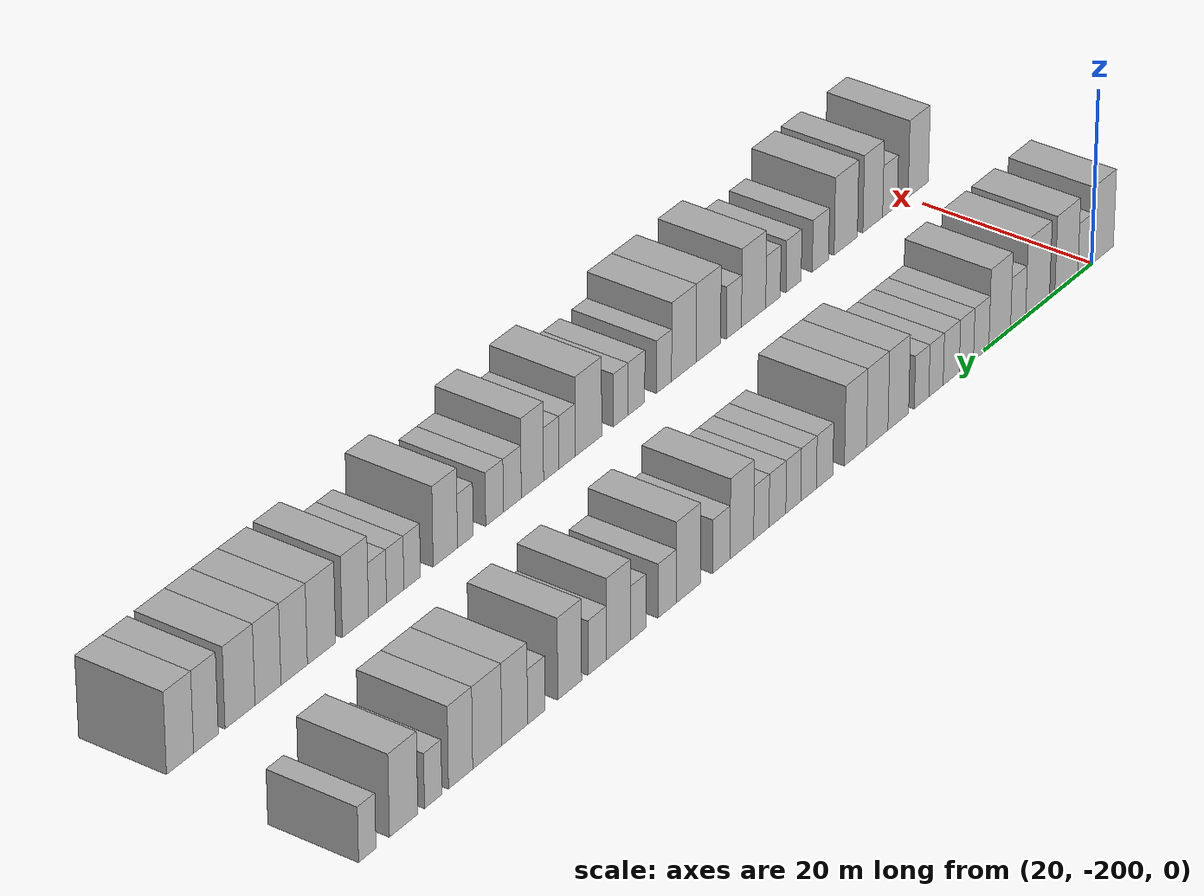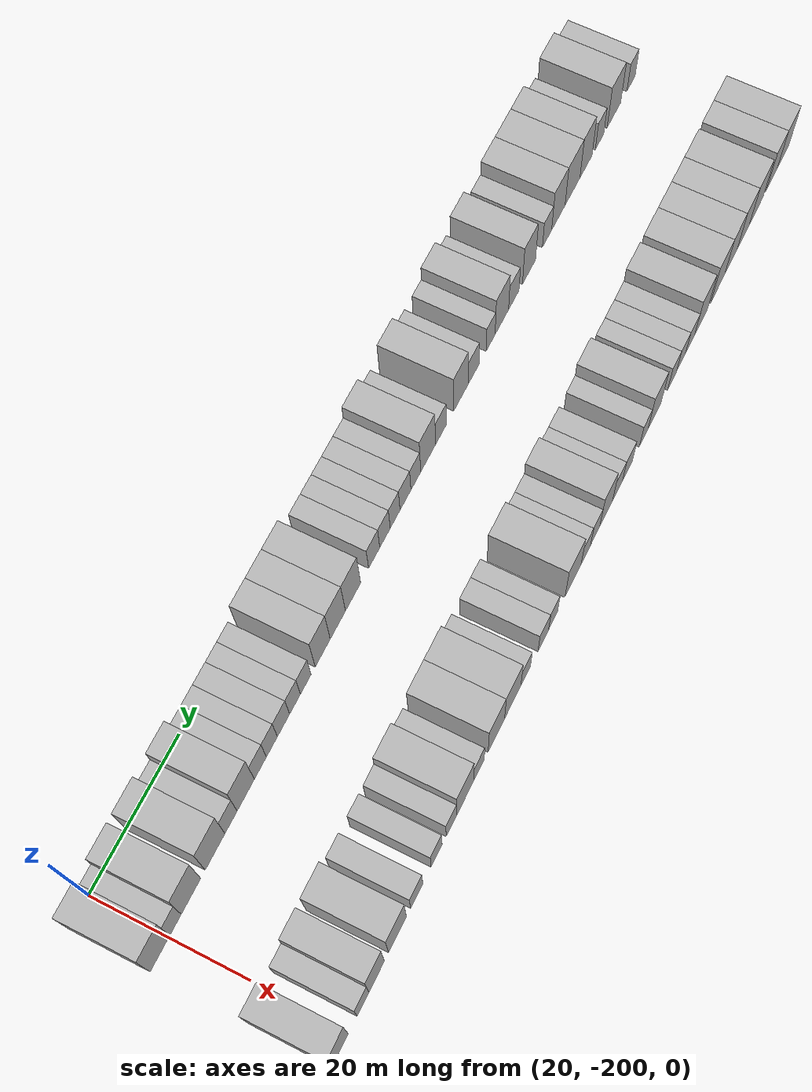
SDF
<sdf version="1.6">
 <world name="default">
  <model name="building_1">
   <static>1</static>
   <pose>25.0000 -201.8803 0 0.000000 0.000000 0.000000</pose>
   <link name="link">
    <pose>0 0 4.50 0 0 0</pose>
    <collision name="collision"><geometry><box><size>10.0000 4.2395 9.0000</size></box></geometry></collision>
    <visual name="visual">
     <cast_shadows>0</cast_shadows>
     <geometry><box><size>10.0000 4.2395 9.0000</size></box></geometry>
     <material>
      <script>
       <uri>model://HANNAS_wall/materials/scripts</uri>
       <uri>model://HANNAS_wall/materials/textures</uri>
       <name>vrc/HANNAS_wall</name>
      </script>
     </material>
    </visual>
   </link>
  </model>
  <model name="building_2">
   <static>1</static>
   <pose>25.0000 -198.5039 0 0.000000 0.000000 0.000000</pose>
   <link name="link">
    <pose>0 0 3.00 0 0 0</pose>
    <collision name="collision"><geometry><box><size>10.0000 2.5133 6.0000</size></box></geometry></collision>
    <visual name="visual">
     <cast_shadows>0</cast_shadows>
     <geometry><box><size>10.0000 2.5133 6.0000</size></box></geometry>
     <material>
      <script>
       <uri>model://HANNAS_wall/materials/scripts</uri>
       <uri>model://HANNAS_wall/materials/textures</uri>
       <name>vrc/HANNAS_wall</name>
      </script>
     </material>
    </visual>
   </link>
  </model>
  <model name="building_3">
   <static>1</static>
   <pose>25.0000 -195.0967 0 0.000000 0.000000 0.000000</pose>
   <link name="link">
    <pose>0 0 4.50 0 0 0</pose>
    <collision name="collision"><geometry><box><size>10.0000 4.3011 9.0000</size></box></geometry></collision>
    <visual name="visual">
     <cast_shadows>0</cast_shadows>
     <geometry><box><size>10.0000 4.3011 9.0000</size></box></geometry>
     <material>
      <script>
       <uri>model://HANNAS_wall/materials/scripts</uri>
       <uri>model://HANNAS_wall/materials/textures</uri>
       <name>vrc/HANNAS_wall</name>
      </script>
     </material>
    </visual>
   </link>
  </model>
  <model name="building_4">
   <static>1</static>
   <pose>25.0000 -189.7284 0 0.000000 0.000000 0.000000</pose>
   <link name="link">
    <pose>0 0 4.50 0 0 0</pose>
    <collision name="collision"><geometry><box><size>10.0000 4.4355 9.0000</size></box></geometry></collision>
    <visual name="visual">
     <cast_shadows>0</cast_shadows>
     <geometry><box><size>10.0000 4.4355 9.0000</size></box></geometry>
     <material>
      <script>
       <uri>model://HANNAS_wall/materials/scripts</uri>
       <uri>model://HANNAS_wall/materials/textures</uri>
       <name>vrc/HANNAS_wall</name>
      </script>
     </material>
    </visual>
   </link>
  </model>
  <model name="building_5">
   <static>1</static>
   <pose>25.0000 -186.1232 0 0.000000 0.000000 0.000000</pose>
   <link name="link">
    <pose>0 0 3.00 0 0 0</pose>
    <collision name="collision"><geometry><box><size>10.0000 2.7748 6.0000</size></box></geometry></collision>
    <visual name="visual">
     <cast_shadows>0</cast_shadows>
     <geometry><box><size>10.0000 2.7748 6.0000</size></box></geometry>
     <material>
      <script>
       <uri>model://HANNAS_wall/materials/scripts</uri>
       <uri>model://HANNAS_wall/materials/textures</uri>
       <name>vrc/HANNAS_wall</name>
      </script>
     </material>
    </visual>
   </link>
  </model>
  <model name="building_6">
   <static>1</static>
   <pose>25.0000 -182.7527 0 0.000000 0.000000 0.000000</pose>
   <link name="link">
    <pose>0 0 4.50 0 0 0</pose>
    <collision name="collision"><geometry><box><size>10.0000 3.9661 9.0000</size></box></geometry></collision>
    <visual name="visual">
     <cast_shadows>0</cast_shadows>
     <geometry><box><size>10.0000 3.9661 9.0000</size></box></geometry>
     <material>
      <script>
       <uri>model://HANNAS_wall/materials/scripts</uri>
       <uri>model://HANNAS_wall/materials/textures</uri>
       <name>vrc/HANNAS_wall</name>
      </script>
     </material>
    </visual>
   </link>
  </model>
  <model name="building_7">
   <static>1</static>
   <pose>25.0000 -179.3696 0 0.000000 0.000000 0.000000</pose>
   <link name="link">
    <pose>0 0 3.00 0 0 0</pose>
    <collision name="collision"><geometry><box><size>10.0000 2.8002 6.0000</size></box></geometry></collision>
    <visual name="visual">
     <cast_shadows>0</cast_shadows>
     <geometry><box><size>10.0000 2.8002 6.0000</size></box></geometry>
     <material>
      <script>
       <uri>model://HANNAS_wall/materials/scripts</uri>
       <uri>model://HANNAS_wall/materials/textures</uri>
       <name>vrc/HANNAS_wall</name>
      </script>
     </material>
    </visual>
   </link>
  </model>
  <model name="building_8">
   <static>1</static>
   <pose>25.0000 -176.6806 0 0.000000 0.000000 0.000000</pose>
   <link name="link">
    <pose>0 0 3.00 0 0 0</pose>
    <collision name="collision"><geometry><box><size>10.0000 2.5779 6.0000</size></box></geometry></collision>
    <visual name="visual">
     <cast_shadows>0</cast_shadows>
     <geometry><box><size>10.0000 2.5779 6.0000</size></box></geometry>
     <material>
      <script>
       <uri>model://HANNAS_wall/materials/scripts</uri>
       <uri>model://HANNAS_wall/materials/textures</uri>
       <name>vrc/HANNAS_wall</name>
      </script>
     </material>
    </visual>
   </link>
  </model>
  <model name="building_9">
   <static>1</static>
   <pose>25.0000 -173.9446 0 0.000000 0.000000 0.000000</pose>
   <link name="link">
    <pose>0 0 3.00 0 0 0</pose>
    <collision name="collision"><geometry><box><size>10.0000 2.8940 6.0000</size></box></geometry></collision>
    <visual name="visual">
     <cast_shadows>0</cast_shadows>
     <geometry><box><size>10.0000 2.8940 6.0000</size></box></geometry>
     <material>
      <script>
       <uri>model://HANNAS_wall/materials/scripts</uri>
       <uri>model://HANNAS_wall/materials/textures</uri>
       <name>vrc/HANNAS_wall</name>
      </script>
     </material>
    </visual>
   </link>
  </model>
  <model name="building_10">
   <static>1</static>
   <pose>25.0000 -171.2128 0 0.000000 0.000000 0.000000</pose>
   <link name="link">
    <pose>0 0 3.00 0 0 0</pose>
    <collision name="collision"><geometry><box><size>10.0000 2.5696 6.0000</size></box></geometry></collision>
    <visual name="visual">
     <cast_shadows>0</cast_shadows>
     <geometry><box><size>10.0000 2.5696 6.0000</size></box></geometry>
     <material>
      <script>
       <uri>model://HANNAS_wall/materials/scripts</uri>
       <uri>model://HANNAS_wall/materials/textures</uri>
       <name>vrc/HANNAS_wall</name>
      </script>
     </material>
    </visual>
   </link>
  </model>
  <model name="building_11">
   <static>1</static>
   <pose>25.0000 -168.6348 0 0.000000 0.000000 0.000000</pose>
   <link name="link">
    <pose>0 0 3.00 0 0 0</pose>
    <collision name="collision"><geometry><box><size>10.0000 2.5864 6.0000</size></box></geometry></collision>
    <visual name="visual">
     <cast_shadows>0</cast_shadows>
     <geometry><box><size>10.0000 2.5864 6.0000</size></box></geometry>
     <material>
      <script>
       <uri>model://HANNAS_wall/materials/scripts</uri>
       <uri>model://HANNAS_wall/materials/textures</uri>
       <name>vrc/HANNAS_wall</name>
      </script>
     </material>
    </visual>
   </link>
  </model>
  <model name="building_12">
   <static>1</static>
   <pose>25.0000 -164.5140 0 0.000000 0.000000 0.000000</pose>
   <link name="link">
    <pose>0 0 4.50 0 0 0</pose>
    <collision name="collision"><geometry><box><size>10.0000 3.6553 9.0000</size></box></geometry></collision>
    <visual name="visual">
     <cast_shadows>0</cast_shadows>
     <geometry><box><size>10.0000 3.6553 9.0000</size></box></geometry>
     <material>
      <script>
       <uri>model://HANNAS_wall/materials/scripts</uri>
       <uri>model://HANNAS_wall/materials/textures</uri>
       <name>vrc/HANNAS_wall</name>
      </script>
     </material>
    </visual>
   </link>
  </model>
  <model name="building_13">
   <static>1</static>
   <pose>25.0000 -160.7998 0 0.000000 0.000000 0.000000</pose>
   <link name="link">
    <pose>0 0 4.50 0 0 0</pose>
    <collision name="collision"><geometry><box><size>10.0000 3.7731 9.0000</size></box></geometry></collision>
    <visual name="visual">
     <cast_shadows>0</cast_shadows>
     <geometry><box><size>10.0000 3.7731 9.0000</size></box></geometry>
     <material>
      <script>
       <uri>model://HANNAS_wall/materials/scripts</uri>
       <uri>model://HANNAS_wall/materials/textures</uri>
       <name>vrc/HANNAS_wall</name>
      </script>
     </material>
    </visual>
   </link>
  </model>
  <model name="building_14">
   <static>1</static>
   <pose>25.0000 -157.0028 0 0.000000 0.000000 0.000000</pose>
   <link name="link">
    <pose>0 0 4.50 0 0 0</pose>
    <collision name="collision"><geometry><box><size>10.0000 3.8210 9.0000</size></box></geometry></collision>
    <visual name="visual">
     <cast_shadows>0</cast_shadows>
     <geometry><box><size>10.0000 3.8210 9.0000</size></box></geometry>
     <material>
      <script>
       <uri>model://HANNAS_wall/materials/scripts</uri>
       <uri>model://HANNAS_wall/materials/textures</uri>
       <name>vrc/HANNAS_wall</name>
      </script>
     </material>
    </visual>
   </link>
  </model>
  <model name="building_15">
   <static>1</static>
   <pose>25.0000 -151.6725 0 0.000000 0.000000 0.000000</pose>
   <link name="link">
    <pose>0 0 3.00 0 0 0</pose>
    <collision name="collision"><geometry><box><size>10.0000 2.8395 6.0000</size></box></geometry></collision>
    <visual name="visual">
     <cast_shadows>0</cast_shadows>
     <geometry><box><size>10.0000 2.8395 6.0000</size></box></geometry>
     <material>
      <script>
       <uri>model://HANNAS_wall/materials/scripts</uri>
       <uri>model://HANNAS_wall/materials/textures</uri>
       <name>vrc/HANNAS_wall</name>
      </script>
     </material>
    </visual>
   </link>
  </model>
  <model name="building_16">
   <static>1</static>
   <pose>25.0000 -148.9115 0 0.000000 0.000000 0.000000</pose>
   <link name="link">
    <pose>0 0 3.00 0 0 0</pose>
    <collision name="collision"><geometry><box><size>10.0000 2.6826 6.0000</size></box></geometry></collision>
    <visual name="visual">
     <cast_shadows>0</cast_shadows>
     <geometry><box><size>10.0000 2.6826 6.0000</size></box></geometry>
     <material>
      <script>
       <uri>model://HANNAS_wall/materials/scripts</uri>
       <uri>model://HANNAS_wall/materials/textures</uri>
       <name>vrc/HANNAS_wall</name>
      </script>
     </material>
    </visual>
   </link>
  </model>
  <model name="building_17">
   <static>1</static>
   <pose>25.0000 -146.3011 0 0.000000 0.000000 0.000000</pose>
   <link name="link">
    <pose>0 0 3.00 0 0 0</pose>
    <collision name="collision"><geometry><box><size>10.0000 2.5381 6.0000</size></box></geometry></collision>
    <visual name="visual">
     <cast_shadows>0</cast_shadows>
     <geometry><box><size>10.0000 2.5381 6.0000</size></box></geometry>
     <material>
      <script>
       <uri>model://HANNAS_wall/materials/scripts</uri>
       <uri>model://HANNAS_wall/materials/textures</uri>
       <name>vrc/HANNAS_wall</name>
      </script>
     </material>
    </visual>
   </link>
  </model>
  <model name="building_18">
   <static>1</static>
   <pose>25.0000 -143.6100 0 0.000000 0.000000 0.000000</pose>
   <link name="link">
    <pose>0 0 3.00 0 0 0</pose>
    <collision name="collision"><geometry><box><size>10.0000 2.8442 6.0000</size></box></geometry></collision>
    <visual name="visual">
     <cast_shadows>0</cast_shadows>
     <geometry><box><size>10.0000 2.8442 6.0000</size></box></geometry>
     <material>
      <script>
       <uri>model://HANNAS_wall/materials/scripts</uri>
       <uri>model://HANNAS_wall/materials/textures</uri>
       <name>vrc/HANNAS_wall</name>
      </script>
     </material>
    </visual>
   </link>
  </model>
  <model name="building_19">
   <static>1</static>
   <pose>25.0000 -140.8965 0 0.000000 0.000000 0.000000</pose>
   <link name="link">
    <pose>0 0 3.00 0 0 0</pose>
    <collision name="collision"><geometry><box><size>10.0000 2.5828 6.0000</size></box></geometry></collision>
    <visual name="visual">
     <cast_shadows>0</cast_shadows>
     <geometry><box><size>10.0000 2.5828 6.0000</size></box></geometry>
     <material>
      <script>
       <uri>model://HANNAS_wall/materials/scripts</uri>
       <uri>model://HANNAS_wall/materials/textures</uri>
       <name>vrc/HANNAS_wall</name>
      </script>
     </material>
    </visual>
   </link>
  </model>
  <model name="building_20">
   <static>1</static>
   <pose>25.0000 -137.6247 0 0.000000 0.000000 0.000000</pose>
   <link name="link">
    <pose>0 0 4.50 0 0 0</pose>
    <collision name="collision"><geometry><box><size>10.0000 3.9608 9.0000</size></box></geometry></collision>
    <visual name="visual">
     <cast_shadows>0</cast_shadows>
     <geometry><box><size>10.0000 3.9608 9.0000</size></box></geometry>
     <material>
      <script>
       <uri>model://HANNAS_wall/materials/scripts</uri>
       <uri>model://HANNAS_wall/materials/textures</uri>
       <name>vrc/HANNAS_wall</name>
      </script>
     </material>
    </visual>
   </link>
  </model>
  <model name="building_21">
   <static>1</static>
   <pose>25.0000 -134.1965 0 0.000000 0.000000 0.000000</pose>
   <link name="link">
    <pose>0 0 3.00 0 0 0</pose>
    <collision name="collision"><geometry><box><size>10.0000 2.8956 6.0000</size></box></geometry></collision>
    <visual name="visual">
     <cast_shadows>0</cast_shadows>
     <geometry><box><size>10.0000 2.8956 6.0000</size></box></geometry>
     <material>
      <script>
       <uri>model://HANNAS_wall/materials/scripts</uri>
       <uri>model://HANNAS_wall/materials/textures</uri>
       <name>vrc/HANNAS_wall</name>
      </script>
     </material>
    </visual>
   </link>
  </model>
  <model name="building_22">
   <static>1</static>
   <pose>25.0000 -128.7804 0 0.000000 0.000000 0.000000</pose>
   <link name="link">
    <pose>0 0 4.50 0 0 0</pose>
    <collision name="collision"><geometry><box><size>10.0000 3.9366 9.0000</size></box></geometry></collision>
    <visual name="visual">
     <cast_shadows>0</cast_shadows>
     <geometry><box><size>10.0000 3.9366 9.0000</size></box></geometry>
     <material>
      <script>
       <uri>model://HANNAS_wall/materials/scripts</uri>
       <uri>model://HANNAS_wall/materials/textures</uri>
       <name>vrc/HANNAS_wall</name>
      </script>
     </material>
    </visual>
   </link>
  </model>
  <model name="building_23">
   <static>1</static>
   <pose>25.0000 -125.3227 0 0.000000 0.000000 0.000000</pose>
   <link name="link">
    <pose>0 0 3.00 0 0 0</pose>
    <collision name="collision"><geometry><box><size>10.0000 2.9788 6.0000</size></box></geometry></collision>
    <visual name="visual">
     <cast_shadows>0</cast_shadows>
     <geometry><box><size>10.0000 2.9788 6.0000</size></box></geometry>
     <material>
      <script>
       <uri>model://HANNAS_wall/materials/scripts</uri>
       <uri>model://HANNAS_wall/materials/textures</uri>
       <name>vrc/HANNAS_wall</name>
      </script>
     </material>
    </visual>
   </link>
  </model>
  <model name="building_24">
   <static>1</static>
   <pose>25.0000 -120.5903 0 0.000000 0.000000 0.000000</pose>
   <link name="link">
    <pose>0 0 3.00 0 0 0</pose>
    <collision name="collision"><geometry><box><size>10.0000 2.4859 6.0000</size></box></geometry></collision>
    <visual name="visual">
     <cast_shadows>0</cast_shadows>
     <geometry><box><size>10.0000 2.4859 6.0000</size></box></geometry>
     <material>
      <script>
       <uri>model://HANNAS_wall/materials/scripts</uri>
       <uri>model://HANNAS_wall/materials/textures</uri>
       <name>vrc/HANNAS_wall</name>
      </script>
     </material>
    </visual>
   </link>
  </model>
  <model name="building_25">
   <static>1</static>
   <pose>25.0000 -117.4405 0 0.000000 0.000000 0.000000</pose>
   <link name="link">
    <pose>0 0 4.50 0 0 0</pose>
    <collision name="collision"><geometry><box><size>10.0000 3.8137 9.0000</size></box></geometry></collision>
    <visual name="visual">
     <cast_shadows>0</cast_shadows>
     <geometry><box><size>10.0000 3.8137 9.0000</size></box></geometry>
     <material>
      <script>
       <uri>model://HANNAS_wall/materials/scripts</uri>
       <uri>model://HANNAS_wall/materials/textures</uri>
       <name>vrc/HANNAS_wall</name>
      </script>
     </material>
    </visual>
   </link>
  </model>
  <model name="building_26">
   <static>1</static>
   <pose>25.0000 -114.0480 0 0.000000 0.000000 0.000000</pose>
   <link name="link">
    <pose>0 0 3.00 0 0 0</pose>
    <collision name="collision"><geometry><box><size>10.0000 2.9712 6.0000</size></box></geometry></collision>
    <visual name="visual">
     <cast_shadows>0</cast_shadows>
     <geometry><box><size>10.0000 2.9712 6.0000</size></box></geometry>
     <material>
      <script>
       <uri>model://HANNAS_wall/materials/scripts</uri>
       <uri>model://HANNAS_wall/materials/textures</uri>
       <name>vrc/HANNAS_wall</name>
      </script>
     </material>
    </visual>
   </link>
  </model>
  <model name="building_27">
   <static>1</static>
   <pose>25.0000 -109.6713 0 0.000000 0.000000 0.000000</pose>
   <link name="link">
    <pose>0 0 4.50 0 0 0</pose>
    <collision name="collision"><geometry><box><size>10.0000 3.7821 9.0000</size></box></geometry></collision>
    <visual name="visual">
     <cast_shadows>0</cast_shadows>
     <geometry><box><size>10.0000 3.7821 9.0000</size></box></geometry>
     <material>
      <script>
       <uri>model://HANNAS_wall/materials/scripts</uri>
       <uri>model://HANNAS_wall/materials/textures</uri>
       <name>vrc/HANNAS_wall</name>
      </script>
     </material>
    </visual>
   </link>
  </model>
  <model name="building_28">
   <static>1</static>
   <pose>25.0000 -104.4233 0 0.000000 0.000000 0.000000</pose>
   <link name="link">
    <pose>0 0 3.00 0 0 0</pose>
    <collision name="collision"><geometry><box><size>10.0000 2.7140 6.0000</size></box></geometry></collision>
    <visual name="visual">
     <cast_shadows>0</cast_shadows>
     <geometry><box><size>10.0000 2.7140 6.0000</size></box></geometry>
     <material>
      <script>
       <uri>model://HANNAS_wall/materials/scripts</uri>
       <uri>model://HANNAS_wall/materials/textures</uri>
       <name>vrc/HANNAS_wall</name>
      </script>
     </material>
    </visual>
   </link>
  </model>
  <model name="building_29">
   <static>1</static>
   <pose>25.0000 -101.0725 0 0.000000 0.000000 0.000000</pose>
   <link name="link">
    <pose>0 0 4.50 0 0 0</pose>
    <collision name="collision"><geometry><box><size>10.0000 3.9875 9.0000</size></box></geometry></collision>
    <visual name="visual">
     <cast_shadows>0</cast_shadows>
     <geometry><box><size>10.0000 3.9875 9.0000</size></box></geometry>
     <material>
      <script>
       <uri>model://HANNAS_wall/materials/scripts</uri>
       <uri>model://HANNAS_wall/materials/textures</uri>
       <name>vrc/HANNAS_wall</name>
      </script>
     </material>
    </visual>
   </link>
  </model>
  <model name="building_30">
   <static>1</static>
   <pose>25.0000 -96.8484 0 0.000000 0.000000 0.000000</pose>
   <link name="link">
    <pose>0 0 4.50 0 0 0</pose>
    <collision name="collision"><geometry><box><size>10.0000 4.4606 9.0000</size></box></geometry></collision>
    <visual name="visual">
     <cast_shadows>0</cast_shadows>
     <geometry><box><size>10.0000 4.4606 9.0000</size></box></geometry>
     <material>
      <script>
       <uri>model://HANNAS_wall/materials/scripts</uri>
       <uri>model://HANNAS_wall/materials/textures</uri>
       <name>vrc/HANNAS_wall</name>
      </script>
     </material>
    </visual>
   </link>
  </model>
  <model name="building_31">
   <static>1</static>
   <pose>25.0000 -92.7761 0 0.000000 0.000000 0.000000</pose>
   <link name="link">
    <pose>0 0 4.50 0 0 0</pose>
    <collision name="collision"><geometry><box><size>10.0000 3.6841 9.0000</size></box></geometry></collision>
    <visual name="visual">
     <cast_shadows>0</cast_shadows>
     <geometry><box><size>10.0000 3.6841 9.0000</size></box></geometry>
     <material>
      <script>
       <uri>model://HANNAS_wall/materials/scripts</uri>
       <uri>model://HANNAS_wall/materials/textures</uri>
       <name>vrc/HANNAS_wall</name>
      </script>
     </material>
    </visual>
   </link>
  </model>
  <model name="building_32">
   <static>1</static>
   <pose>25.0000 -88.6249 0 0.000000 0.000000 0.000000</pose>
   <link name="link">
    <pose>0 0 3.00 0 0 0</pose>
    <collision name="collision"><geometry><box><size>10.0000 2.6183 6.0000</size></box></geometry></collision>
    <visual name="visual">
     <cast_shadows>0</cast_shadows>
     <geometry><box><size>10.0000 2.6183 6.0000</size></box></geometry>
     <material>
      <script>
       <uri>model://HANNAS_wall/materials/scripts</uri>
       <uri>model://HANNAS_wall/materials/textures</uri>
       <name>vrc/HANNAS_wall</name>
      </script>
     </material>
    </visual>
   </link>
  </model>
  <model name="building_33">
   <static>1</static>
   <pose>25.0000 -84.1977 0 0.000000 0.000000 0.000000</pose>
   <link name="link">
    <pose>0 0 4.50 0 0 0</pose>
    <collision name="collision"><geometry><box><size>10.0000 4.2360 9.0000</size></box></geometry></collision>
    <visual name="visual">
     <cast_shadows>0</cast_shadows>
     <geometry><box><size>10.0000 4.2360 9.0000</size></box></geometry>
     <material>
      <script>
       <uri>model://HANNAS_wall/materials/scripts</uri>
       <uri>model://HANNAS_wall/materials/textures</uri>
       <name>vrc/HANNAS_wall</name>
      </script>
     </material>
    </visual>
   </link>
  </model>
  <model name="building_34">
   <static>1</static>
   <pose>25.0000 -78.7950 0 0.000000 0.000000 0.000000</pose>
   <link name="link">
    <pose>0 0 3.00 0 0 0</pose>
    <collision name="collision"><geometry><box><size>10.0000 2.5693 6.0000</size></box></geometry></collision>
    <visual name="visual">
     <cast_shadows>0</cast_shadows>
     <geometry><box><size>10.0000 2.5693 6.0000</size></box></geometry>
     <material>
      <script>
       <uri>model://HANNAS_wall/materials/scripts</uri>
       <uri>model://HANNAS_wall/materials/textures</uri>
       <name>vrc/HANNAS_wall</name>
      </script>
     </material>
    </visual>
   </link>
  </model>
  <model name="building_101">
   <static>1</static>
   <pose>47.0000 -202.1157 0 0.000000 0.000000 0.000000</pose>
   <link name="link">
    <pose>0 0 4.50 0 0 0</pose>
    <collision name="collision"><geometry><box><size>10.0000 3.7686 9.0000</size></box></geometry></collision>
    <visual name="visual">
     <cast_shadows>0</cast_shadows>
     <geometry><box><size>10.0000 3.7686 9.0000</size></box></geometry>
     <material>
      <script>
       <uri>model://HANNAS_wall/materials/scripts</uri>
       <uri>model://HANNAS_wall/materials/textures</uri>
       <name>vrc/HANNAS_wall</name>
      </script>
     </material>
    </visual>
   </link>
  </model>
  <model name="building_102">
   <static>1</static>
   <pose>47.0000 -196.8727 0 0.000000 0.000000 0.000000</pose>
   <link name="link">
    <pose>0 0 3.00 0 0 0</pose>
    <collision name="collision"><geometry><box><size>10.0000 2.7173 6.0000</size></box></geometry></collision>
    <visual name="visual">
     <cast_shadows>0</cast_shadows>
     <geometry><box><size>10.0000 2.7173 6.0000</size></box></geometry>
     <material>
      <script>
       <uri>model://HANNAS_wall/materials/scripts</uri>
       <uri>model://HANNAS_wall/materials/textures</uri>
       <name>vrc/HANNAS_wall</name>
      </script>
     </material>
    </visual>
   </link>
  </model>
  <model name="building_103">
   <static>1</static>
   <pose>47.0000 -193.7010 0 0.000000 0.000000 0.000000</pose>
   <link name="link">
    <pose>0 0 4.50 0 0 0</pose>
    <collision name="collision"><geometry><box><size>10.0000 3.6262 9.0000</size></box></geometry></collision>
    <visual name="visual">
     <cast_shadows>0</cast_shadows>
     <geometry><box><size>10.0000 3.6262 9.0000</size></box></geometry>
     <material>
      <script>
       <uri>model://HANNAS_wall/materials/scripts</uri>
       <uri>model://HANNAS_wall/materials/textures</uri>
       <name>vrc/HANNAS_wall</name>
      </script>
     </material>
    </visual>
   </link>
  </model>
  <model name="building_104">
   <static>1</static>
   <pose>47.0000 -188.7712 0 0.000000 0.000000 0.000000</pose>
   <link name="link">
    <pose>0 0 4.50 0 0 0</pose>
    <collision name="collision"><geometry><box><size>10.0000 4.2334 9.0000</size></box></geometry></collision>
    <visual name="visual">
     <cast_shadows>0</cast_shadows>
     <geometry><box><size>10.0000 4.2334 9.0000</size></box></geometry>
     <material>
      <script>
       <uri>model://HANNAS_wall/materials/scripts</uri>
       <uri>model://HANNAS_wall/materials/textures</uri>
       <name>vrc/HANNAS_wall</name>
      </script>
     </material>
    </visual>
   </link>
  </model>
  <model name="building_105">
   <static>1</static>
   <pose>47.0000 -184.1840 0 0.000000 0.000000 0.000000</pose>
   <link name="link">
    <pose>0 0 3.00 0 0 0</pose>
    <collision name="collision"><geometry><box><size>10.0000 2.9411 6.0000</size></box></geometry></collision>
    <visual name="visual">
     <cast_shadows>0</cast_shadows>
     <geometry><box><size>10.0000 2.9411 6.0000</size></box></geometry>
     <material>
      <script>
       <uri>model://HANNAS_wall/materials/scripts</uri>
       <uri>model://HANNAS_wall/materials/textures</uri>
       <name>vrc/HANNAS_wall</name>
      </script>
     </material>
    </visual>
   </link>
  </model>
  <model name="building_106">
   <static>1</static>
   <pose>47.0000 -179.3597 0 0.000000 0.000000 0.000000</pose>
   <link name="link">
    <pose>0 0 3.00 0 0 0</pose>
    <collision name="collision"><geometry><box><size>10.0000 2.7074 6.0000</size></box></geometry></collision>
    <visual name="visual">
     <cast_shadows>0</cast_shadows>
     <geometry><box><size>10.0000 2.7074 6.0000</size></box></geometry>
     <material>
      <script>
       <uri>model://HANNAS_wall/materials/scripts</uri>
       <uri>model://HANNAS_wall/materials/textures</uri>
       <name>vrc/HANNAS_wall</name>
      </script>
     </material>
    </visual>
   </link>
  </model>
  <model name="building_107">
   <static>1</static>
   <pose>47.0000 -175.7055 0 0.000000 0.000000 0.000000</pose>
   <link name="link">
    <pose>0 0 3.00 0 0 0</pose>
    <collision name="collision"><geometry><box><size>10.0000 2.6011 6.0000</size></box></geometry></collision>
    <visual name="visual">
     <cast_shadows>0</cast_shadows>
     <geometry><box><size>10.0000 2.6011 6.0000</size></box></geometry>
     <material>
      <script>
       <uri>model://HANNAS_wall/materials/scripts</uri>
       <uri>model://HANNAS_wall/materials/textures</uri>
       <name>vrc/HANNAS_wall</name>
      </script>
     </material>
    </visual>
   </link>
  </model>
  <model name="building_108">
   <static>1</static>
   <pose>47.0000 -172.2666 0 0.000000 0.000000 0.000000</pose>
   <link name="link">
    <pose>0 0 4.50 0 0 0</pose>
    <collision name="collision"><geometry><box><size>10.0000 4.2766 9.0000</size></box></geometry></collision>
    <visual name="visual">
     <cast_shadows>0</cast_shadows>
     <geometry><box><size>10.0000 4.2766 9.0000</size></box></geometry>
     <material>
      <script>
       <uri>model://HANNAS_wall/materials/scripts</uri>
       <uri>model://HANNAS_wall/materials/textures</uri>
       <name>vrc/HANNAS_wall</name>
      </script>
     </material>
    </visual>
   </link>
  </model>
  <model name="building_109">
   <static>1</static>
   <pose>47.0000 -168.8028 0 0.000000 0.000000 0.000000</pose>
   <link name="link">
    <pose>0 0 3.00 0 0 0</pose>
    <collision name="collision"><geometry><box><size>10.0000 2.6510 6.0000</size></box></geometry></collision>
    <visual name="visual">
     <cast_shadows>0</cast_shadows>
     <geometry><box><size>10.0000 2.6510 6.0000</size></box></geometry>
     <material>
      <script>
       <uri>model://HANNAS_wall/materials/scripts</uri>
       <uri>model://HANNAS_wall/materials/textures</uri>
       <name>vrc/HANNAS_wall</name>
      </script>
     </material>
    </visual>
   </link>
  </model>
  <model name="building_110">
   <static>1</static>
   <pose>47.0000 -164.3587 0 0.000000 0.000000 0.000000</pose>
   <link name="link">
    <pose>0 0 4.50 0 0 0</pose>
    <collision name="collision"><geometry><box><size>10.0000 4.2373 9.0000</size></box></geometry></collision>
    <visual name="visual">
     <cast_shadows>0</cast_shadows>
     <geometry><box><size>10.0000 4.2373 9.0000</size></box></geometry>
     <material>
      <script>
       <uri>model://HANNAS_wall/materials/scripts</uri>
       <uri>model://HANNAS_wall/materials/textures</uri>
       <name>vrc/HANNAS_wall</name>
      </script>
     </material>
    </visual>
   </link>
  </model>
  <model name="building_111">
   <static>1</static>
   <pose>47.0000 -160.1246 0 0.000000 0.000000 0.000000</pose>
   <link name="link">
    <pose>0 0 4.50 0 0 0</pose>
    <collision name="collision"><geometry><box><size>10.0000 4.2308 9.0000</size></box></geometry></collision>
    <visual name="visual">
     <cast_shadows>0</cast_shadows>
     <geometry><box><size>10.0000 4.2308 9.0000</size></box></geometry>
     <material>
      <script>
       <uri>model://HANNAS_wall/materials/scripts</uri>
       <uri>model://HANNAS_wall/materials/textures</uri>
       <name>vrc/HANNAS_wall</name>
      </script>
     </material>
    </visual>
   </link>
  </model>
  <model name="building_112">
   <static>1</static>
   <pose>47.0000 -156.7264 0 0.000000 0.000000 0.000000</pose>
   <link name="link">
    <pose>0 0 3.00 0 0 0</pose>
    <collision name="collision"><geometry><box><size>10.0000 2.5656 6.0000</size></box></geometry></collision>
    <visual name="visual">
     <cast_shadows>0</cast_shadows>
     <geometry><box><size>10.0000 2.5656 6.0000</size></box></geometry>
     <material>
      <script>
       <uri>model://HANNAS_wall/materials/scripts</uri>
       <uri>model://HANNAS_wall/materials/textures</uri>
       <name>vrc/HANNAS_wall</name>
      </script>
     </material>
    </visual>
   </link>
  </model>
  <model name="building_113">
   <static>1</static>
   <pose>47.0000 -152.0364 0 0.000000 0.000000 0.000000</pose>
   <link name="link">
    <pose>0 0 3.00 0 0 0</pose>
    <collision name="collision"><geometry><box><size>10.0000 2.8145 6.0000</size></box></geometry></collision>
    <visual name="visual">
     <cast_shadows>0</cast_shadows>
     <geometry><box><size>10.0000 2.8145 6.0000</size></box></geometry>
     <material>
      <script>
       <uri>model://HANNAS_wall/materials/scripts</uri>
       <uri>model://HANNAS_wall/materials/textures</uri>
       <name>vrc/HANNAS_wall</name>
      </script>
     </material>
    </visual>
   </link>
  </model>
  <model name="building_114">
   <static>1</static>
   <pose>47.0000 -149.4011 0 0.000000 0.000000 0.000000</pose>
   <link name="link">
    <pose>0 0 3.00 0 0 0</pose>
    <collision name="collision"><geometry><box><size>10.0000 2.4560 6.0000</size></box></geometry></collision>
    <visual name="visual">
     <cast_shadows>0</cast_shadows>
     <geometry><box><size>10.0000 2.4560 6.0000</size></box></geometry>
     <material>
      <script>
       <uri>model://HANNAS_wall/materials/scripts</uri>
       <uri>model://HANNAS_wall/materials/textures</uri>
       <name>vrc/HANNAS_wall</name>
      </script>
     </material>
    </visual>
   </link>
  </model>
  <model name="building_115">
   <static>1</static>
   <pose>47.0000 -143.9634 0 0.000000 0.000000 0.000000</pose>
   <link name="link">
    <pose>0 0 4.50 0 0 0</pose>
    <collision name="collision"><geometry><box><size>10.0000 4.4194 9.0000</size></box></geometry></collision>
    <visual name="visual">
     <cast_shadows>0</cast_shadows>
     <geometry><box><size>10.0000 4.4194 9.0000</size></box></geometry>
     <material>
      <script>
       <uri>model://HANNAS_wall/materials/scripts</uri>
       <uri>model://HANNAS_wall/materials/textures</uri>
       <name>vrc/HANNAS_wall</name>
      </script>
     </material>
    </visual>
   </link>
  </model>
  <model name="building_116">
   <static>1</static>
   <pose>47.0000 -140.4302 0 0.000000 0.000000 0.000000</pose>
   <link name="link">
    <pose>0 0 3.00 0 0 0</pose>
    <collision name="collision"><geometry><box><size>10.0000 2.6471 6.0000</size></box></geometry></collision>
    <visual name="visual">
     <cast_shadows>0</cast_shadows>
     <geometry><box><size>10.0000 2.6471 6.0000</size></box></geometry>
     <material>
      <script>
       <uri>model://HANNAS_wall/materials/scripts</uri>
       <uri>model://HANNAS_wall/materials/textures</uri>
       <name>vrc/HANNAS_wall</name>
      </script>
     </material>
    </visual>
   </link>
  </model>
  <model name="building_117">
   <static>1</static>
   <pose>47.0000 -137.8344 0 0.000000 0.000000 0.000000</pose>
   <link name="link">
    <pose>0 0 3.00 0 0 0</pose>
    <collision name="collision"><geometry><box><size>10.0000 2.5445 6.0000</size></box></geometry></collision>
    <visual name="visual">
     <cast_shadows>0</cast_shadows>
     <geometry><box><size>10.0000 2.5445 6.0000</size></box></geometry>
     <material>
      <script>
       <uri>model://HANNAS_wall/materials/scripts</uri>
       <uri>model://HANNAS_wall/materials/textures</uri>
       <name>vrc/HANNAS_wall</name>
      </script>
     </material>
    </visual>
   </link>
  </model>
  <model name="building_118">
   <static>1</static>
   <pose>47.0000 -134.7362 0 0.000000 0.000000 0.000000</pose>
   <link name="link">
    <pose>0 0 4.50 0 0 0</pose>
    <collision name="collision"><geometry><box><size>10.0000 3.6519 9.0000</size></box></geometry></collision>
    <visual name="visual">
     <cast_shadows>0</cast_shadows>
     <geometry><box><size>10.0000 3.6519 9.0000</size></box></geometry>
     <material>
      <script>
       <uri>model://HANNAS_wall/materials/scripts</uri>
       <uri>model://HANNAS_wall/materials/textures</uri>
       <name>vrc/HANNAS_wall</name>
      </script>
     </material>
    </visual>
   </link>
  </model>
  <model name="building_119">
   <static>1</static>
   <pose>47.0000 -131.4575 0 0.000000 0.000000 0.000000</pose>
   <link name="link">
    <pose>0 0 3.00 0 0 0</pose>
    <collision name="collision"><geometry><box><size>10.0000 2.9054 6.0000</size></box></geometry></collision>
    <visual name="visual">
     <cast_shadows>0</cast_shadows>
     <geometry><box><size>10.0000 2.9054 6.0000</size></box></geometry>
     <material>
      <script>
       <uri>model://HANNAS_wall/materials/scripts</uri>
       <uri>model://HANNAS_wall/materials/textures</uri>
       <name>vrc/HANNAS_wall</name>
      </script>
     </material>
    </visual>
   </link>
  </model>
  <model name="building_120">
   <static>1</static>
   <pose>47.0000 -128.5754 0 0.000000 0.000000 0.000000</pose>
   <link name="link">
    <pose>0 0 3.00 0 0 0</pose>
    <collision name="collision"><geometry><box><size>10.0000 2.8588 6.0000</size></box></geometry></collision>
    <visual name="visual">
     <cast_shadows>0</cast_shadows>
     <geometry><box><size>10.0000 2.8588 6.0000</size></box></geometry>
     <material>
      <script>
       <uri>model://HANNAS_wall/materials/scripts</uri>
       <uri>model://HANNAS_wall/materials/textures</uri>
       <name>vrc/HANNAS_wall</name>
      </script>
     </material>
    </visual>
   </link>
  </model>
  <model name="building_121">
   <static>1</static>
   <pose>47.0000 -123.8905 0 0.000000 0.000000 0.000000</pose>
   <link name="link">
    <pose>0 0 3.00 0 0 0</pose>
    <collision name="collision"><geometry><box><size>10.0000 2.5111 6.0000</size></box></geometry></collision>
    <visual name="visual">
     <cast_shadows>0</cast_shadows>
     <geometry><box><size>10.0000 2.5111 6.0000</size></box></geometry>
     <material>
      <script>
       <uri>model://HANNAS_wall/materials/scripts</uri>
       <uri>model://HANNAS_wall/materials/textures</uri>
       <name>vrc/HANNAS_wall</name>
      </script>
     </material>
    </visual>
   </link>
  </model>
  <model name="building_122">
   <static>1</static>
   <pose>47.0000 -120.6997 0 0.000000 0.000000 0.000000</pose>
   <link name="link">
    <pose>0 0 4.50 0 0 0</pose>
    <collision name="collision"><geometry><box><size>10.0000 3.8703 9.0000</size></box></geometry></collision>
    <visual name="visual">
     <cast_shadows>0</cast_shadows>
     <geometry><box><size>10.0000 3.8703 9.0000</size></box></geometry>
     <material>
      <script>
       <uri>model://HANNAS_wall/materials/scripts</uri>
       <uri>model://HANNAS_wall/materials/textures</uri>
       <name>vrc/HANNAS_wall</name>
      </script>
     </material>
    </visual>
   </link>
  </model>
  <model name="building_123">
   <static>1</static>
   <pose>47.0000 -115.4669 0 0.000000 0.000000 0.000000</pose>
   <link name="link">
    <pose>0 0 3.00 0 0 0</pose>
    <collision name="collision"><geometry><box><size>10.0000 2.5953 6.0000</size></box></geometry></collision>
    <visual name="visual">
     <cast_shadows>0</cast_shadows>
     <geometry><box><size>10.0000 2.5953 6.0000</size></box></geometry>
     <material>
      <script>
       <uri>model://HANNAS_wall/materials/scripts</uri>
       <uri>model://HANNAS_wall/materials/textures</uri>
       <name>vrc/HANNAS_wall</name>
      </script>
     </material>
    </visual>
   </link>
  </model>
  <model name="building_124">
   <static>1</static>
   <pose>47.0000 -112.8059 0 0.000000 0.000000 0.000000</pose>
   <link name="link">
    <pose>0 0 3.00 0 0 0</pose>
    <collision name="collision"><geometry><box><size>10.0000 2.7268 6.0000</size></box></geometry></collision>
    <visual name="visual">
     <cast_shadows>0</cast_shadows>
     <geometry><box><size>10.0000 2.7268 6.0000</size></box></geometry>
     <material>
      <script>
       <uri>model://HANNAS_wall/materials/scripts</uri>
       <uri>model://HANNAS_wall/materials/textures</uri>
       <name>vrc/HANNAS_wall</name>
      </script>
     </material>
    </visual>
   </link>
  </model>
  <model name="building_125">
   <static>1</static>
   <pose>47.0000 -110.0570 0 0.000000 0.000000 0.000000</pose>
   <link name="link">
    <pose>0 0 3.00 0 0 0</pose>
    <collision name="collision"><geometry><box><size>10.0000 2.7709 6.0000</size></box></geometry></collision>
    <visual name="visual">
     <cast_shadows>0</cast_shadows>
     <geometry><box><size>10.0000 2.7709 6.0000</size></box></geometry>
     <material>
      <script>
       <uri>model://HANNAS_wall/materials/scripts</uri>
       <uri>model://HANNAS_wall/materials/textures</uri>
       <name>vrc/HANNAS_wall</name>
      </script>
     </material>
    </visual>
   </link>
  </model>
  <model name="building_126">
   <static>1</static>
   <pose>47.0000 -106.6357 0 0.000000 0.000000 0.000000</pose>
   <link name="link">
    <pose>0 0 4.50 0 0 0</pose>
    <collision name="collision"><geometry><box><size>10.0000 4.0716 9.0000</size></box></geometry></collision>
    <visual name="visual">
     <cast_shadows>0</cast_shadows>
     <geometry><box><size>10.0000 4.0716 9.0000</size></box></geometry>
     <material>
      <script>
       <uri>model://HANNAS_wall/materials/scripts</uri>
       <uri>model://HANNAS_wall/materials/textures</uri>
       <name>vrc/HANNAS_wall</name>
      </script>
     </material>
    </visual>
   </link>
  </model>
  <model name="building_127">
   <static>1</static>
   <pose>47.0000 -101.4383 0 0.000000 0.000000 0.000000</pose>
   <link name="link">
    <pose>0 0 4.50 0 0 0</pose>
    <collision name="collision"><geometry><box><size>10.0000 4.3233 9.0000</size></box></geometry></collision>
    <visual name="visual">
     <cast_shadows>0</cast_shadows>
     <geometry><box><size>10.0000 4.3233 9.0000</size></box></geometry>
     <material>
      <script>
       <uri>model://HANNAS_wall/materials/scripts</uri>
       <uri>model://HANNAS_wall/materials/textures</uri>
       <name>vrc/HANNAS_wall</name>
      </script>
     </material>
    </visual>
   </link>
  </model>
  <model name="building_128">
   <static>1</static>
   <pose>47.0000 -97.2813 0 0.000000 0.000000 0.000000</pose>
   <link name="link">
    <pose>0 0 4.50 0 0 0</pose>
    <collision name="collision"><geometry><box><size>10.0000 3.9908 9.0000</size></box></geometry></collision>
    <visual name="visual">
     <cast_shadows>0</cast_shadows>
     <geometry><box><size>10.0000 3.9908 9.0000</size></box></geometry>
     <material>
      <script>
       <uri>model://HANNAS_wall/materials/scripts</uri>
       <uri>model://HANNAS_wall/materials/textures</uri>
       <name>vrc/HANNAS_wall</name>
      </script>
     </material>
    </visual>
   </link>
  </model>
  <model name="building_129">
   <static>1</static>
   <pose>47.0000 -93.3379 0 0.000000 0.000000 0.000000</pose>
   <link name="link">
    <pose>0 0 4.50 0 0 0</pose>
    <collision name="collision"><geometry><box><size>10.0000 3.8960 9.0000</size></box></geometry></collision>
    <visual name="visual">
     <cast_shadows>0</cast_shadows>
     <geometry><box><size>10.0000 3.8960 9.0000</size></box></geometry>
     <material>
      <script>
       <uri>model://HANNAS_wall/materials/scripts</uri>
       <uri>model://HANNAS_wall/materials/textures</uri>
       <name>vrc/HANNAS_wall</name>
      </script>
     </material>
    </visual>
   </link>
  </model>
  <model name="building_130">
   <static>1</static>
   <pose>47.0000 -89.1614 0 0.000000 0.000000 0.000000</pose>
   <link name="link">
    <pose>0 0 4.50 0 0 0</pose>
    <collision name="collision"><geometry><box><size>10.0000 4.4569 9.0000</size></box></geometry></collision>
    <visual name="visual">
     <cast_shadows>0</cast_shadows>
     <geometry><box><size>10.0000 4.4569 9.0000</size></box></geometry>
     <material>
      <script>
       <uri>model://HANNAS_wall/materials/scripts</uri>
       <uri>model://HANNAS_wall/materials/textures</uri>
       <name>vrc/HANNAS_wall</name>
      </script>
     </material>
    </visual>
   </link>
  </model>
  <model name="building_131">
   <static>1</static>
   <pose>47.0000 -84.1271 0 0.000000 0.000000 0.000000</pose>
   <link name="link">
    <pose>0 0 4.50 0 0 0</pose>
    <collision name="collision"><geometry><box><size>10.0000 3.6119 9.0000</size></box></geometry></collision>
    <visual name="visual">
     <cast_shadows>0</cast_shadows>
     <geometry><box><size>10.0000 3.6119 9.0000</size></box></geometry>
     <material>
      <script>
       <uri>model://HANNAS_wall/materials/scripts</uri>
       <uri>model://HANNAS_wall/materials/textures</uri>
       <name>vrc/HANNAS_wall</name>
      </script>
     </material>
    </visual>
   </link>
  </model>
  <model name="building_132">
   <static>1</static>
   <pose>47.0000 -80.3286 0 0.000000 0.000000 0.000000</pose>
   <link name="link">
    <pose>0 0 4.50 0 0 0</pose>
    <collision name="collision"><geometry><box><size>10.0000 3.9851 9.0000</size></box></geometry></collision>
    <visual name="visual">
     <cast_shadows>0</cast_shadows>
     <geometry><box><size>10.0000 3.9851 9.0000</size></box></geometry>
     <material>
      <script>
       <uri>model://HANNAS_wall/materials/scripts</uri>
       <uri>model://HANNAS_wall/materials/textures</uri>
       <name>vrc/HANNAS_wall</name>
      </script>
     </material>
    </visual>
   </link>
  </model>
 </world>
</sdf>
